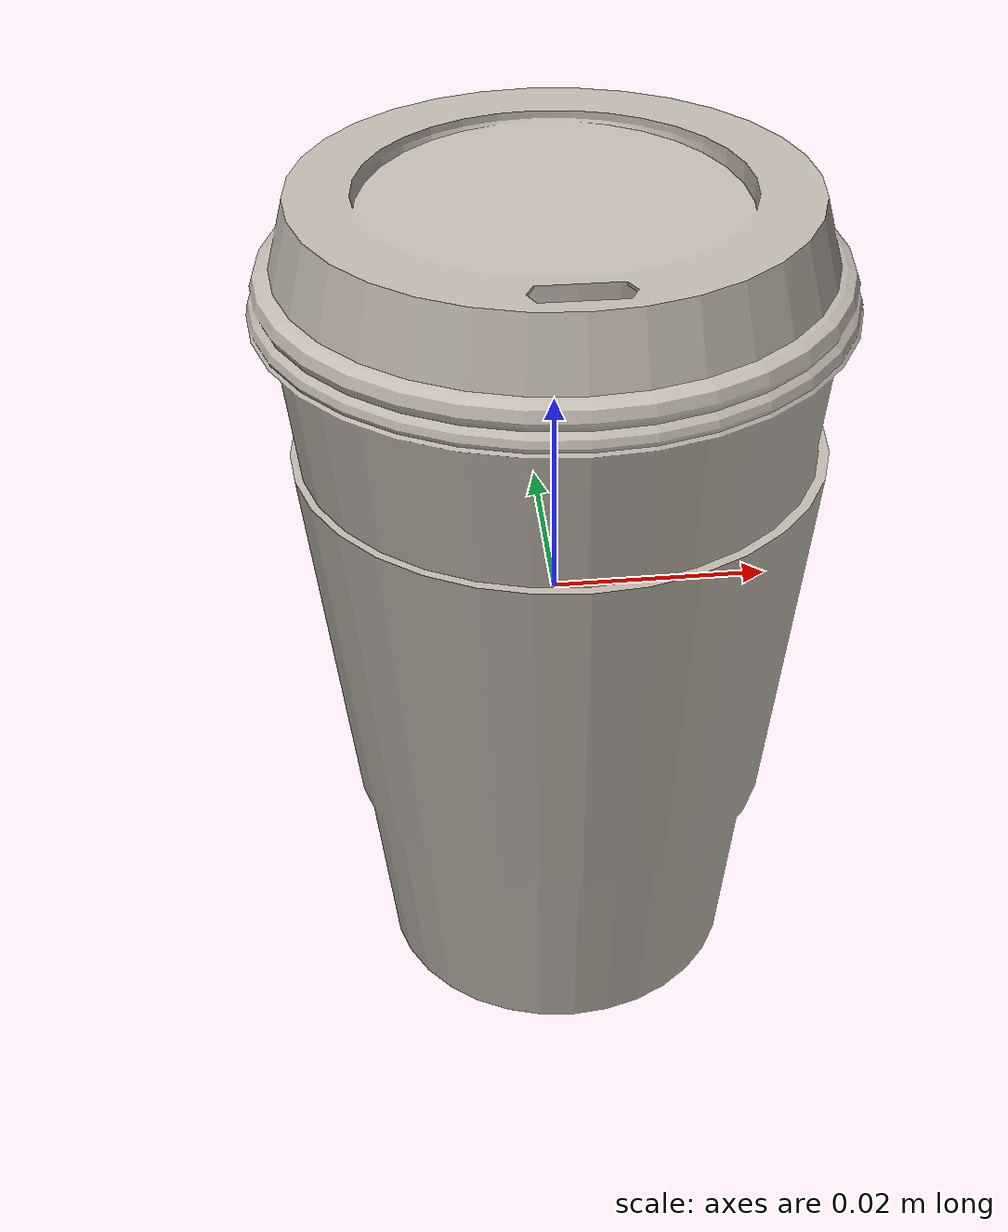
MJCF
<mujoco model="coffee_cup_5">
  <asset>
    <texture file="/home/abhiram03/Desktop/mimicgen/robosuite-kitchen/robosuite/models/assets/textures/ceramic.png" name="tex-coffee_cup_5" type="2d"/>
    <material name="coffee_cup_5" reflectance="0.5" texrepeat="1 1" texture="tex-coffee_cup_5" texuniform="false"/>
    <mesh file="visual/model_normalized_0.obj" name="model_normalized_0_vis" scale="0.08000000000000002 0.08000000000000002 0.08000000000000002" refquat="1.0 0.0 0.0 0.0"/>
    <mesh file="collision/model_normalized_collision_13.obj" name="model_normalized_collision_13._coll" scale="0.08000000000000002 0.08000000000000002 0.08000000000000002" refquat="1.0 0.0 0.0 0.0"/>
    <mesh file="collision/model_normalized_collision_15.obj" name="model_normalized_collision_15._coll" scale="0.08000000000000002 0.08000000000000002 0.08000000000000002" refquat="1.0 0.0 0.0 0.0"/>
    <mesh file="collision/model_normalized_collision_10.obj" name="model_normalized_collision_10._coll" scale="0.08000000000000002 0.08000000000000002 0.08000000000000002" refquat="1.0 0.0 0.0 0.0"/>
    <mesh file="collision/model_normalized_collision_26.obj" name="model_normalized_collision_26._coll" scale="0.08000000000000002 0.08000000000000002 0.08000000000000002" refquat="1.0 0.0 0.0 0.0"/>
    <mesh file="collision/model_normalized_collision_25.obj" name="model_normalized_collision_25._coll" scale="0.08000000000000002 0.08000000000000002 0.08000000000000002" refquat="1.0 0.0 0.0 0.0"/>
    <mesh file="collision/model_normalized_collision_5.obj" name="model_normalized_collision_5._coll" scale="0.08000000000000002 0.08000000000000002 0.08000000000000002" refquat="1.0 0.0 0.0 0.0"/>
    <mesh file="collision/model_normalized_collision_31.obj" name="model_normalized_collision_31._coll" scale="0.08000000000000002 0.08000000000000002 0.08000000000000002" refquat="1.0 0.0 0.0 0.0"/>
    <mesh file="collision/model_normalized_collision_3.obj" name="model_normalized_collision_3._coll" scale="0.08000000000000002 0.08000000000000002 0.08000000000000002" refquat="1.0 0.0 0.0 0.0"/>
    <mesh file="collision/model_normalized_collision_14.obj" name="model_normalized_collision_14._coll" scale="0.08000000000000002 0.08000000000000002 0.08000000000000002" refquat="1.0 0.0 0.0 0.0"/>
    <mesh file="collision/model_normalized_collision_28.obj" name="model_normalized_collision_28._coll" scale="0.08000000000000002 0.08000000000000002 0.08000000000000002" refquat="1.0 0.0 0.0 0.0"/>
    <mesh file="collision/model_normalized_collision_11.obj" name="model_normalized_collision_11._coll" scale="0.08000000000000002 0.08000000000000002 0.08000000000000002" refquat="1.0 0.0 0.0 0.0"/>
    <mesh file="collision/model_normalized_collision_29.obj" name="model_normalized_collision_29._coll" scale="0.08000000000000002 0.08000000000000002 0.08000000000000002" refquat="1.0 0.0 0.0 0.0"/>
    <mesh file="collision/model_normalized_collision_24.obj" name="model_normalized_collision_24._coll" scale="0.08000000000000002 0.08000000000000002 0.08000000000000002" refquat="1.0 0.0 0.0 0.0"/>
    <mesh file="collision/model_normalized_collision_1.obj" name="model_normalized_collision_1._coll" scale="0.08000000000000002 0.08000000000000002 0.08000000000000002" refquat="1.0 0.0 0.0 0.0"/>
    <mesh file="collision/model_normalized_collision_0.obj" name="model_normalized_collision_0._coll" scale="0.08000000000000002 0.08000000000000002 0.08000000000000002" refquat="1.0 0.0 0.0 0.0"/>
    <mesh file="collision/model_normalized_collision_27.obj" name="model_normalized_collision_27._coll" scale="0.08000000000000002 0.08000000000000002 0.08000000000000002" refquat="1.0 0.0 0.0 0.0"/>
    <mesh file="collision/model_normalized_collision_9.obj" name="model_normalized_collision_9._coll" scale="0.08000000000000002 0.08000000000000002 0.08000000000000002" refquat="1.0 0.0 0.0 0.0"/>
    <mesh file="collision/model_normalized_collision_19.obj" name="model_normalized_collision_19._coll" scale="0.08000000000000002 0.08000000000000002 0.08000000000000002" refquat="1.0 0.0 0.0 0.0"/>
    <mesh file="collision/model_normalized_collision_21.obj" name="model_normalized_collision_21._coll" scale="0.08000000000000002 0.08000000000000002 0.08000000000000002" refquat="1.0 0.0 0.0 0.0"/>
    <mesh file="collision/model_normalized_collision_30.obj" name="model_normalized_collision_30._coll" scale="0.08000000000000002 0.08000000000000002 0.08000000000000002" refquat="1.0 0.0 0.0 0.0"/>
    <mesh file="collision/model_normalized_collision_20.obj" name="model_normalized_collision_20._coll" scale="0.08000000000000002 0.08000000000000002 0.08000000000000002" refquat="1.0 0.0 0.0 0.0"/>
    <mesh file="collision/model_normalized_collision_2.obj" name="model_normalized_collision_2._coll" scale="0.08000000000000002 0.08000000000000002 0.08000000000000002" refquat="1.0 0.0 0.0 0.0"/>
    <mesh file="collision/model_normalized_collision_7.obj" name="model_normalized_collision_7._coll" scale="0.08000000000000002 0.08000000000000002 0.08000000000000002" refquat="1.0 0.0 0.0 0.0"/>
    <mesh file="collision/model_normalized_collision_22.obj" name="model_normalized_collision_22._coll" scale="0.08000000000000002 0.08000000000000002 0.08000000000000002" refquat="1.0 0.0 0.0 0.0"/>
    <mesh file="collision/model_normalized_collision_16.obj" name="model_normalized_collision_16._coll" scale="0.08000000000000002 0.08000000000000002 0.08000000000000002" refquat="1.0 0.0 0.0 0.0"/>
    <mesh file="collision/model_normalized_collision_8.obj" name="model_normalized_collision_8._coll" scale="0.08000000000000002 0.08000000000000002 0.08000000000000002" refquat="1.0 0.0 0.0 0.0"/>
    <mesh file="collision/model_normalized_collision_6.obj" name="model_normalized_collision_6._coll" scale="0.08000000000000002 0.08000000000000002 0.08000000000000002" refquat="1.0 0.0 0.0 0.0"/>
    <mesh file="collision/model_normalized_collision_18.obj" name="model_normalized_collision_18._coll" scale="0.08000000000000002 0.08000000000000002 0.08000000000000002" refquat="1.0 0.0 0.0 0.0"/>
    <mesh file="collision/model_normalized_collision_17.obj" name="model_normalized_collision_17._coll" scale="0.08000000000000002 0.08000000000000002 0.08000000000000002" refquat="1.0 0.0 0.0 0.0"/>
    <mesh file="collision/model_normalized_collision_12.obj" name="model_normalized_collision_12._coll" scale="0.08000000000000002 0.08000000000000002 0.08000000000000002" refquat="1.0 0.0 0.0 0.0"/>
    <mesh file="collision/model_normalized_collision_4.obj" name="model_normalized_collision_4._coll" scale="0.08000000000000002 0.08000000000000002 0.08000000000000002" refquat="1.0 0.0 0.0 0.0"/>
    <mesh file="collision/model_normalized_collision_23.obj" name="model_normalized_collision_23._coll" scale="0.08000000000000002 0.08000000000000002 0.08000000000000002" refquat="1.0 0.0 0.0 0.0"/>
    <texture type="2d" name="af3ab97eb2fc_coffee_cup__3d_asse_texture_kd" file="visual/af3ab97eb2fc_coffee_cup__3d_asse_texture_kd.png"/>
    <material name="Material_0" texture="af3ab97eb2fc_coffee_cup__3d_asse_texture_kd" specular="0.5" shininess="0.5"/>
  </asset>
  <worldbody>
    <body>
      <body name="object">
        <geom solimp="0.998 0.998 0.001" solref="0.001 1" density="100" friction="0.95 0.3 0.1" type="mesh" mesh="model_normalized_0_vis" conaffinity="0" contype="0" group="1" material="Material_0"/>
        <geom solimp="0.998 0.998 0.001" solref="0.001 1" density="100" friction="0.95 0.3 0.1" type="mesh" mesh="model_normalized_collision_13._coll" group="0" rgba="0.8 0.8 0.8 0.0"/>
        <geom solimp="0.998 0.998 0.001" solref="0.001 1" density="100" friction="0.95 0.3 0.1" type="mesh" mesh="model_normalized_collision_15._coll" group="0" rgba="0.8 0.8 0.8 0.0"/>
        <geom solimp="0.998 0.998 0.001" solref="0.001 1" density="100" friction="0.95 0.3 0.1" type="mesh" mesh="model_normalized_collision_10._coll" group="0" rgba="0.8 0.8 0.8 0.0"/>
        <geom solimp="0.998 0.998 0.001" solref="0.001 1" density="100" friction="0.95 0.3 0.1" type="mesh" mesh="model_normalized_collision_26._coll" group="0" rgba="0.8 0.8 0.8 0.0"/>
        <geom solimp="0.998 0.998 0.001" solref="0.001 1" density="100" friction="0.95 0.3 0.1" type="mesh" mesh="model_normalized_collision_25._coll" group="0" rgba="0.8 0.8 0.8 0.0"/>
        <geom solimp="0.998 0.998 0.001" solref="0.001 1" density="100" friction="0.95 0.3 0.1" type="mesh" mesh="model_normalized_collision_5._coll" group="0" rgba="0.8 0.8 0.8 0.0"/>
        <geom solimp="0.998 0.998 0.001" solref="0.001 1" density="100" friction="0.95 0.3 0.1" type="mesh" mesh="model_normalized_collision_31._coll" group="0" rgba="0.8 0.8 0.8 0.0"/>
        <geom solimp="0.998 0.998 0.001" solref="0.001 1" density="100" friction="0.95 0.3 0.1" type="mesh" mesh="model_normalized_collision_3._coll" group="0" rgba="0.8 0.8 0.8 0.0"/>
        <geom solimp="0.998 0.998 0.001" solref="0.001 1" density="100" friction="0.95 0.3 0.1" type="mesh" mesh="model_normalized_collision_14._coll" group="0" rgba="0.8 0.8 0.8 0.0"/>
        <geom solimp="0.998 0.998 0.001" solref="0.001 1" density="100" friction="0.95 0.3 0.1" type="mesh" mesh="model_normalized_collision_28._coll" group="0" rgba="0.8 0.8 0.8 0.0"/>
        <geom solimp="0.998 0.998 0.001" solref="0.001 1" density="100" friction="0.95 0.3 0.1" type="mesh" mesh="model_normalized_collision_11._coll" group="0" rgba="0.8 0.8 0.8 0.0"/>
        <geom solimp="0.998 0.998 0.001" solref="0.001 1" density="100" friction="0.95 0.3 0.1" type="mesh" mesh="model_normalized_collision_29._coll" group="0" rgba="0.8 0.8 0.8 0.0"/>
        <geom solimp="0.998 0.998 0.001" solref="0.001 1" density="100" friction="0.95 0.3 0.1" type="mesh" mesh="model_normalized_collision_24._coll" group="0" rgba="0.8 0.8 0.8 0.0"/>
        <geom solimp="0.998 0.998 0.001" solref="0.001 1" density="100" friction="0.95 0.3 0.1" type="mesh" mesh="model_normalized_collision_1._coll" group="0" rgba="0.8 0.8 0.8 0.0"/>
        <geom solimp="0.998 0.998 0.001" solref="0.001 1" density="100" friction="0.95 0.3 0.1" type="mesh" mesh="model_normalized_collision_0._coll" group="0" rgba="0.8 0.8 0.8 0.0"/>
        <geom solimp="0.998 0.998 0.001" solref="0.001 1" density="100" friction="0.95 0.3 0.1" type="mesh" mesh="model_normalized_collision_27._coll" group="0" rgba="0.8 0.8 0.8 0.0"/>
        <geom solimp="0.998 0.998 0.001" solref="0.001 1" density="100" friction="0.95 0.3 0.1" type="mesh" mesh="model_normalized_collision_9._coll" group="0" rgba="0.8 0.8 0.8 0.0"/>
        <geom solimp="0.998 0.998 0.001" solref="0.001 1" density="100" friction="0.95 0.3 0.1" type="mesh" mesh="model_normalized_collision_19._coll" group="0" rgba="0.8 0.8 0.8 0.0"/>
        <geom solimp="0.998 0.998 0.001" solref="0.001 1" density="100" friction="0.95 0.3 0.1" type="mesh" mesh="model_normalized_collision_21._coll" group="0" rgba="0.8 0.8 0.8 0.0"/>
        <geom solimp="0.998 0.998 0.001" solref="0.001 1" density="100" friction="0.95 0.3 0.1" type="mesh" mesh="model_normalized_collision_30._coll" group="0" rgba="0.8 0.8 0.8 0.0"/>
        <geom solimp="0.998 0.998 0.001" solref="0.001 1" density="100" friction="0.95 0.3 0.1" type="mesh" mesh="model_normalized_collision_20._coll" group="0" rgba="0.8 0.8 0.8 0.0"/>
        <geom solimp="0.998 0.998 0.001" solref="0.001 1" density="100" friction="0.95 0.3 0.1" type="mesh" mesh="model_normalized_collision_2._coll" group="0" rgba="0.8 0.8 0.8 0.0"/>
        <geom solimp="0.998 0.998 0.001" solref="0.001 1" density="100" friction="0.95 0.3 0.1" type="mesh" mesh="model_normalized_collision_7._coll" group="0" rgba="0.8 0.8 0.8 0.0"/>
        <geom solimp="0.998 0.998 0.001" solref="0.001 1" density="100" friction="0.95 0.3 0.1" type="mesh" mesh="model_normalized_collision_22._coll" group="0" rgba="0.8 0.8 0.8 0.0"/>
        <geom solimp="0.998 0.998 0.001" solref="0.001 1" density="100" friction="0.95 0.3 0.1" type="mesh" mesh="model_normalized_collision_16._coll" group="0" rgba="0.8 0.8 0.8 0.0"/>
        <geom solimp="0.998 0.998 0.001" solref="0.001 1" density="100" friction="0.95 0.3 0.1" type="mesh" mesh="model_normalized_collision_8._coll" group="0" rgba="0.8 0.8 0.8 0.0"/>
        <geom solimp="0.998 0.998 0.001" solref="0.001 1" density="100" friction="0.95 0.3 0.1" type="mesh" mesh="model_normalized_collision_6._coll" group="0" rgba="0.8 0.8 0.8 0.0"/>
        <geom solimp="0.998 0.998 0.001" solref="0.001 1" density="100" friction="0.95 0.3 0.1" type="mesh" mesh="model_normalized_collision_18._coll" group="0" rgba="0.8 0.8 0.8 0.0"/>
        <geom solimp="0.998 0.998 0.001" solref="0.001 1" density="100" friction="0.95 0.3 0.1" type="mesh" mesh="model_normalized_collision_17._coll" group="0" rgba="0.8 0.8 0.8 0.0"/>
        <geom solimp="0.998 0.998 0.001" solref="0.001 1" density="100" friction="0.95 0.3 0.1" type="mesh" mesh="model_normalized_collision_12._coll" group="0" rgba="0.8 0.8 0.8 0.0"/>
        <geom solimp="0.998 0.998 0.001" solref="0.001 1" density="100" friction="0.95 0.3 0.1" type="mesh" mesh="model_normalized_collision_4._coll" group="0" rgba="0.8 0.8 0.8 0.0"/>
        <geom solimp="0.998 0.998 0.001" solref="0.001 1" density="100" friction="0.95 0.3 0.1" type="mesh" mesh="model_normalized_collision_23._coll" group="0" rgba="0.8 0.8 0.8 0.0"/>
      </body>
      <site rgba="0 0 0 0" size="0.005" pos="-0.00015683479999999863 0.0001983128000000001 -0.040606060000000006" name="bottom_site"/>
      <site rgba="0 0 0 0" size="0.005" pos="-0.00015683479999999863 0.0001983128000000001 0.0406060616" name="top_site"/>
      <site rgba="0 0 0 0" size="0.005" pos="0.026509832000000007 0.026864979200000003 7.999999995789155e-10" name="horizontal_radius_site"/>
    </body>
  </worldbody>
</mujoco>
